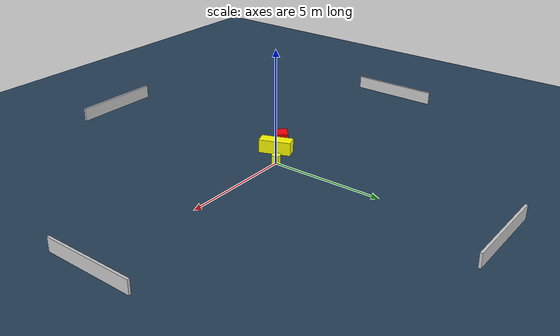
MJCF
<?xml version="1.0" ?>
<mujoco model="generated_environment">
  <option timestep="0.01" integrator="RK4" cone="elliptic"/>
  <default>
    <geom density="1"/>
  </default>
  <asset>
    <texture builtin="gradient" height="3072" name="skybox" rgb1="0.3 0.5 0.7" rgb2="0 0 0" type="skybox" width="512"/>
    <texture builtin="checker" height="300" name="groundplane" rgb1="0.2 0.3 0.4" rgb2="0.1 0.2 0.3" type="2d" width="300"/>
    <material name="groundplane" reflectance="0.2" texrepeat="5 5" texture="groundplane"/>
  </asset>
  <worldbody>
    <light dir="0 0 -1" directional="true" pos="0 0 1.5"/>
    <geom condim="3" friction="0.5 0.005 0.001" material="groundplane" name="floor" pos="0 0 0" size="0 0 0.05" type="plane"/>
    <body name="walls">
      <geom name="wall_1" condim="4" pos="-10.0 0.0 0.3" rgba="0.800000011920929 0.800000011920929 0.800000011920929 1.0" size="0.05 2.0 0.3" type="box"/>
      <geom name="wall_2" condim="4" pos="10.0 0.0 0.3" rgba="0.800000011920929 0.800000011920929 0.800000011920929 1.0" size="0.05 2.0 0.3" type="box"/>
      <geom name="wall_3" condim="4" pos="0.0 -10.0 0.3" rgba="0.800000011920929 0.800000011920929 0.800000011920929 1.0" size="2.0 0.05 0.3" type="box"/>
      <geom name="wall_4" condim="4" pos="0.0 10.0 0.3" rgba="0.800000011920929 0.800000011920929 0.800000011920929 1.0" size="2.0 0.05 0.3" type="box"/>
    </body>
    <body name="robot">
      <joint name="joint_x" type="slide" pos="0 0 0" axis="1 0 0"/>
      <joint name="joint_y" type="slide" pos="0 0 0" axis="0 1 0"/>
      <geom name="robot" type="cylinder" pos="0.0 0.0 0.2" size="0.2 0.2 0.0" mass="5.0" friction="1.0 0.005 0.0001" condim="4" rgba="1.0 1.0 0.0 1.0"/>
    </body>
    <body name="obstacle_1_movable">
      <geom name="obstacle_1_movable" condim="4" pos="-0.892271027641409 -0.6927744816702311 0.3" euler="0 0 111.41839836234585" friction="0.0 0.005 0.001" rgba="1.0 1.0 0.0 1.0" size="0.7078050914891532 0.2756767674327116 0.3" type="box" mass="0.1"/>
      <joint type="free"/>
    </body>
    <body name="obstacle_2_static">
      <geom name="obstacle_2_static" condim="4" pos="-1.6776782561205998 -0.949663598493043 0.3" euler="0 0 222.24956870154867" friction="0.0 0.005 0.001" rgba="1.0 0.0 0.0 1.0" size="0.3255252595660363 0.23697104735539515 0.3" type="box"/>
    </body>
  </worldbody>
  <actuator>
    <motor name="actuator_x" joint="joint_x" gear="1" ctrlrange="-1 1"/>
    <motor name="actuator_y" joint="joint_y" gear="1" ctrlrange="-1 1"/>
  </actuator>
</mujoco>
